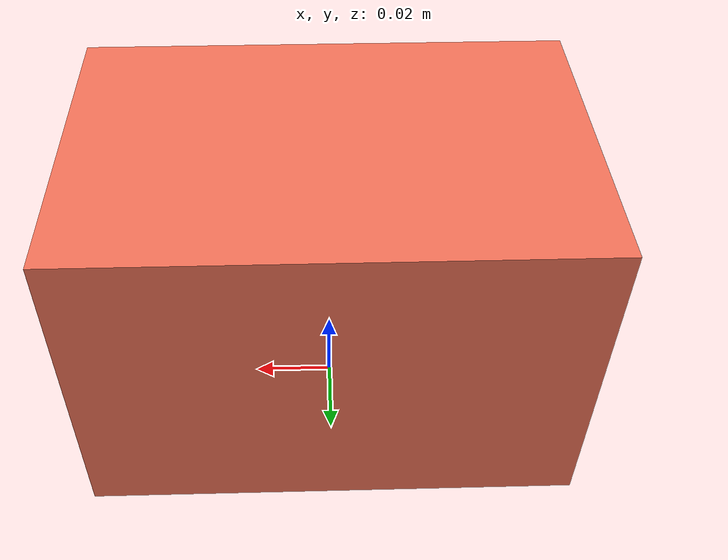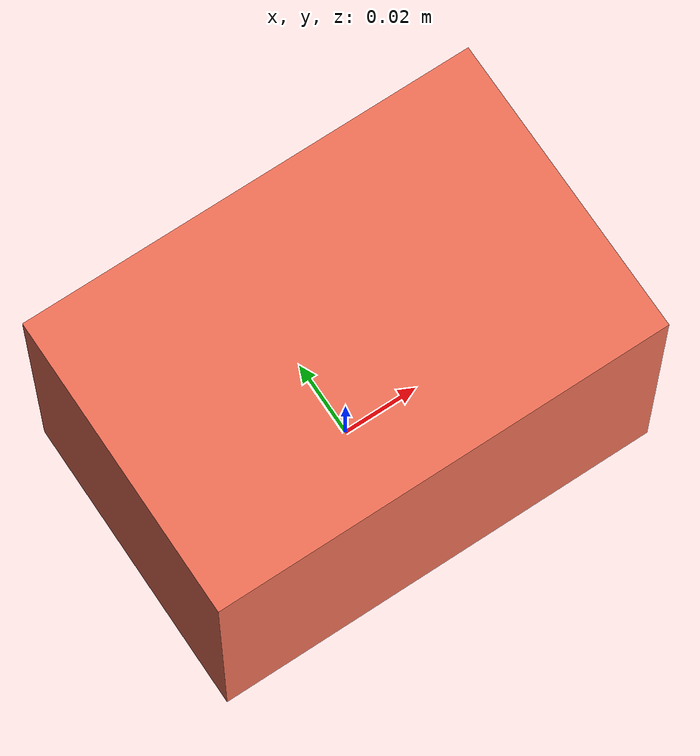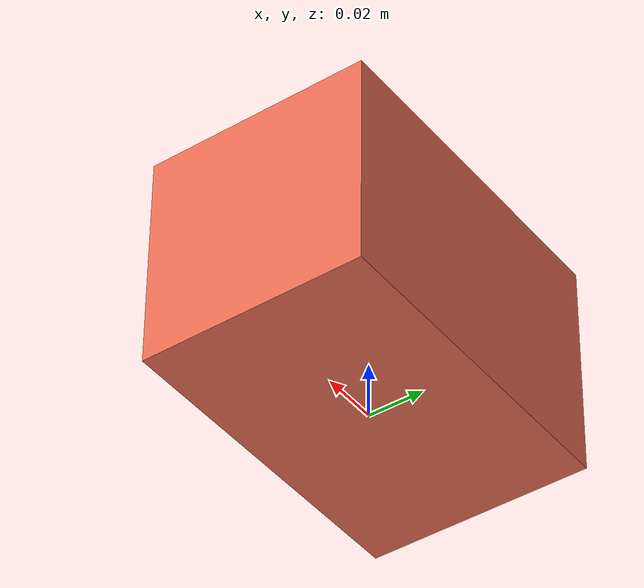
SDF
<?xml version="1.0"?>
<sdf version="1.9">
  <model name="medicine_box_medium">
    <static>true</static>
    <link name="body">
      <collision name="collision">
        <pose>0 0 0.04 0 0 0</pose>
        <geometry>
          <box>
            <size>0.12 0.08 0.08</size>
          </box>
        </geometry>
      </collision>
      <visual name="visual">
        <pose>0 0 0.04 0 0 0</pose>
        <geometry>
          <box>
            <size>0.12 0.08 0.08</size>
          </box>
        </geometry>
        <material>
          <ambient>0.86 0.38 0.29 1</ambient>
          <diffuse>0.94 0.44 0.34 1</diffuse>
          <specular>0.12 0.12 0.12 1</specular>
        </material>
      </visual>
    </link>
  </model>
</sdf>
